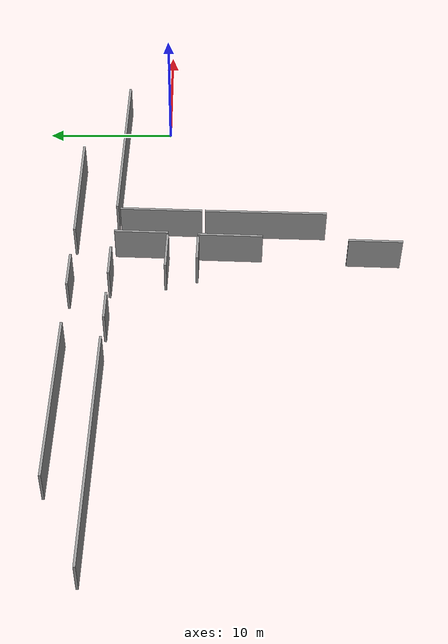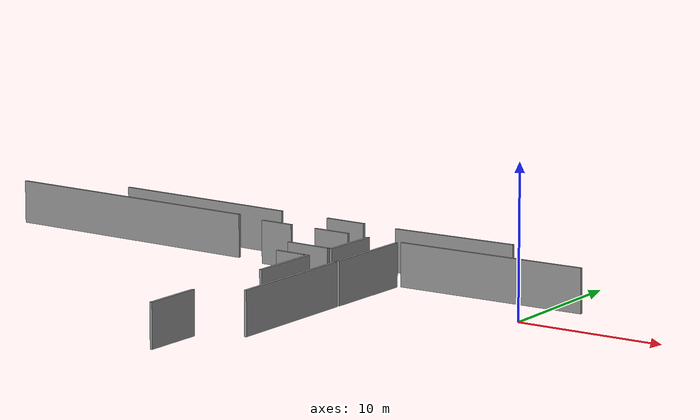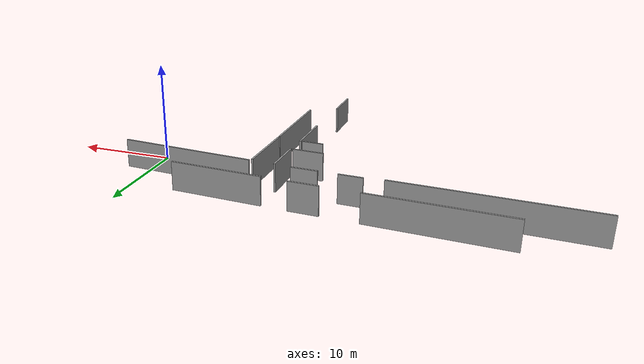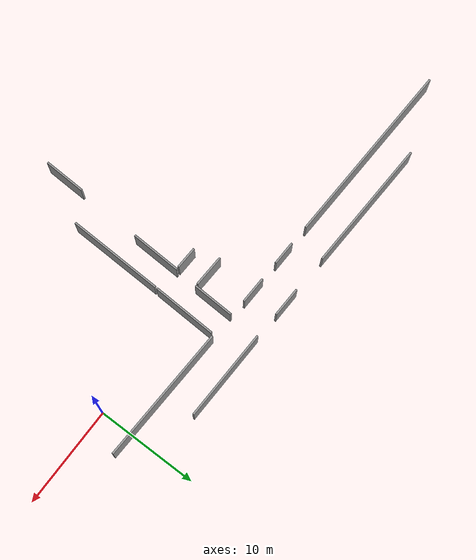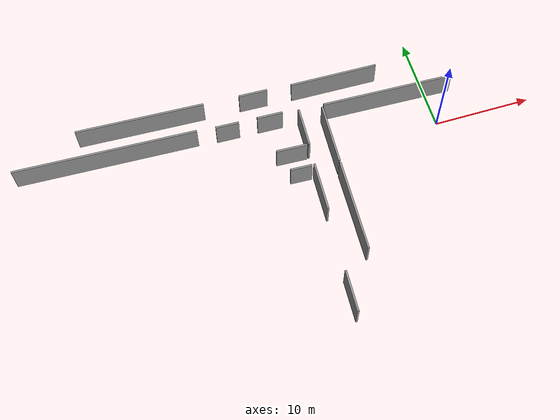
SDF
<sdf version="1.7">
 <world name="world">
  <scene>
   <ambient>0.8 0.8 0.8 1</ambient>
   <background>0 0 0 1</background>
   <grid>0</grid>
   <shadows>0</shadows>
   <grid>0</grid>
   <origin_visual>0</origin_visual>
  </scene>
  <light name="sun" type="directional">
   <cast_shadows>0</cast_shadows>
   <pose>0 0 10 0 -0 0</pose>
   <diffuse>0.8 0.8 0.8 1</diffuse>
   <specular>0.2 0.2 0.2 1</specular>
   <attenuation>
    <range>1000</range>
    <constant>0.9</constant>
    <linear>0.01</linear>
    <quadratic>0.001</quadratic>
   </attenuation>
   <direction>-0.5 0.1 -0.9</direction>
   <spot><inner_angle>0</inner_angle><outer_angle>0</outer_angle><falloff>0</falloff></spot>
  </light>
  <model name="campus_L1"><static>1</static><pose>-22000 -31500 0 0 -0 0</pose></model>
  <gravity>0 0 -9.8</gravity>
  <magnetic_field>6e-06 2.3e-05 -4.2e-05</magnetic_field>
  <atmosphere type="adiabatic"/>
  <physics type="ode">
   <max_step_size>0.001</max_step_size>
   <real_time_factor>1</real_time_factor>
   <real_time_update_rate>1000</real_time_update_rate>
  </physics>
  <spherical_coordinates>
   <surface_model>EARTH_WGS84</surface_model>
   <latitude_deg>0</latitude_deg>
   <longitude_deg>0</longitude_deg>
   <elevation>0</elevation>
   <heading_deg>0</heading_deg>
  </spherical_coordinates>
  <audio><device>default</device></audio>
  <model name="unit_box">
   <pose>-4.27173 3.60343 1.53644 -1e-06 -0.0138 -0.035971</pose>
   <link name="link">
    <inertial>
     <mass>1</mass>
     <inertia>
      <ixx>0.166667</ixx>
      <ixy>0</ixy>
      <ixz>0</ixz>
      <iyy>0.166667</iyy>
      <iyz>0</iyz>
      <izz>0.166667</izz>
     </inertia>
    </inertial>
    <collision name="collision"><geometry><box><size>13.4771 0.177092 2.88933</size></box></geometry></collision>
    <visual name="visual">
     <geometry><box><size>13.4771 0.177092 2.88933</size></box></geometry>
     <material>
      <script><name>Gazebo/Grey</name><uri>file://media/materials/scripts/gazebo.material</uri></script>
     </material>
    </visual>
   </link>
  </model>
  <model name="unit_box_clone">
   <pose>-8.9823 6.89439 1.50234 -0.001518 -0.013058 -0.022375</pose>
   <link name="link">
    <inertial>
     <mass>1</mass>
     <inertia>
      <ixx>0.166667</ixx>
      <ixy>0</ixy>
      <ixz>0</ixz>
      <iyy>0.166667</iyy>
      <iyz>0</iyz>
      <izz>0.166667</izz>
     </inertia>
    </inertial>
    <collision name="collision"><geometry><box><size>8.973 0.177092 2.88933</size></box></geometry></collision>
    <visual name="visual">
     <geometry><box><size>8.973 0.177092 2.88933</size></box></geometry>
     <material>
      <script><name>Gazebo/Grey</name><uri>file://media/materials/scripts/gazebo.material</uri></script>
     </material>
    </visual>
   </link>
  </model>
  <model name="unit_box_clone_0">
   <pose>-16.5469 4.17722 1.44375 0 0 -0.027477</pose>
   <link name="link">
    <inertial>
     <mass>1</mass>
     <inertia>
      <ixx>0.166667</ixx>
      <ixy>0</ixy>
      <ixz>0</ixz>
      <iyy>0.166667</iyy>
      <iyz>0</iyz>
      <izz>0.166667</izz>
     </inertia>
    </inertial>
    <collision name="collision"><geometry><box><size>2.61072 0.177092 2.88933</size></box></geometry></collision>
    <visual name="visual">
     <geometry><box><size>2.61072 0.177092 2.88933</size></box></geometry>
     <material>
      <script><name>Gazebo/Grey</name><uri>file://media/materials/scripts/gazebo.material</uri></script>
     </material>
    </visual>
   </link>
  </model>
  <model name="unit_box_clone_clone">
   <pose>-17.4696 7.17127 1.44375 0 -1e-06 -0.027009</pose>
   <link name="link">
    <inertial>
     <mass>1</mass>
     <inertia>
      <ixx>0.166667</ixx>
      <ixy>0</ixy>
      <ixz>0</ixz>
      <iyy>0.166667</iyy>
      <iyz>0</iyz>
      <izz>0.166667</izz>
     </inertia>
    </inertial>
    <collision name="collision"><geometry><box><size>2.92107 0.177092 2.88933</size></box></geometry></collision>
    <visual name="visual">
     <geometry><box><size>2.92107 0.177092 2.88933</size></box></geometry>
     <material>
      <script><name>Gazebo/Grey</name><uri>file://media/materials/scripts/gazebo.material</uri></script>
     </material>
    </visual>
   </link>
  </model>
  <model name="unit_box_clone_clone_0">
   <pose>-29.0699 7.55497 1.44375 3e-06 -1e-06 -0.035362</pose>
   <link name="link">
    <inertial>
     <mass>1</mass>
     <inertia>
      <ixx>0.166667</ixx>
      <ixy>0</ixy>
      <ixz>0</ixz>
      <iyy>0.166667</iyy>
      <iyz>0</iyz>
      <izz>0.166667</izz>
     </inertia>
    </inertial>
    <collision name="collision"><geometry><box><size>12.9697 0.177092 2.88933</size></box></geometry></collision>
    <visual name="visual">
     <geometry><box><size>12.9697 0.177092 2.88933</size></box></geometry>
     <material>
      <script><name>Gazebo/Grey</name><uri>file://media/materials/scripts/gazebo.material</uri></script>
     </material>
    </visual>
   </link>
  </model>
  <model name="unit_box_clone_clone_0_clone">
   <pose>-33.1319 4.7363 1.57603 0 -1e-06 -0.034047</pose>
   <link name="link">
    <inertial>
     <mass>1</mass>
     <inertia>
      <ixx>0.166667</ixx>
      <ixy>0</ixy>
      <ixz>0</ixz>
      <iyy>0.166667</iyy>
      <iyz>0</iyz>
      <izz>0.166667</izz>
     </inertia>
    </inertial>
    <collision name="collision"><geometry><box><size>18.3075 0.177092 2.88933</size></box></geometry></collision>
    <visual name="visual">
     <geometry><box><size>18.3075 0.177092 2.88933</size></box></geometry>
     <material>
      <script><name>Gazebo/Grey</name><uri>file://media/materials/scripts/gazebo.material</uri></script>
     </material>
    </visual>
   </link>
  </model>
  <model name="unit_box_clone_clone_clone">
   <pose>-20.9125 4.29448 1.44375 -0 1e-06 -0.027637</pose>
   <link name="link">
    <inertial>
     <mass>1</mass>
     <inertia>
      <ixx>0.166667</ixx>
      <ixy>0</ixy>
      <ixz>0</ixz>
      <iyy>0.166667</iyy>
      <iyz>0</iyz>
      <izz>0.166667</izz>
     </inertia>
    </inertial>
    <collision name="collision"><geometry><box><size>2.34889 0.177092 2.88933</size></box></geometry></collision>
    <visual name="visual">
     <geometry><box><size>2.34889 0.177092 2.88933</size></box></geometry>
     <material>
      <script><name>Gazebo/Grey</name><uri>file://media/materials/scripts/gazebo.material</uri></script>
     </material>
    </visual>
   </link>
  </model>
  <model name="unit_box_clone_0_clone">
   <pose>-13.6625 1.91333 1.44375 -6e-06 0 -1.60681</pose>
   <link name="link">
    <inertial>
     <mass>1</mass>
     <inertia>
      <ixx>0.166667</ixx>
      <ixy>0</ixy>
      <ixz>0</ixz>
      <iyy>0.166667</iyy>
      <iyz>0</iyz>
      <izz>0.166667</izz>
     </inertia>
    </inertial>
    <collision name="collision"><geometry><box><size>4.0922 0.177092 2.88933</size></box></geometry></collision>
    <visual name="visual">
     <geometry><box><size>4.0922 0.177092 2.88933</size></box></geometry>
     <material>
      <script><name>Gazebo/Grey</name><uri>file://media/materials/scripts/gazebo.material</uri></script>
     </material>
    </visual>
   </link>
  </model>
  <model name="unit_box_clone_0_clone_clone">
   <pose>-14.0044 -4.84043 1.44376 1e-06 1e-06 -1.60661</pose>
   <link name="link">
    <inertial>
     <mass>1</mass>
     <inertia>
      <ixx>0.166667</ixx>
      <ixy>0</ixy>
      <ixz>0</ixz>
      <iyy>0.166667</iyy>
      <iyz>0</iyz>
      <izz>0.166667</izz>
     </inertia>
    </inertial>
    <collision name="collision"><geometry><box><size>4.94935 0.177092 2.88933</size></box></geometry></collision>
    <visual name="visual">
     <geometry><box><size>4.94935 0.177092 2.88933</size></box></geometry>
     <material>
      <script><name>Gazebo/Grey</name><uri>file://media/materials/scripts/gazebo.material</uri></script>
     </material>
    </visual>
   </link>
  </model>
  <model name="unit_box_clone_0_clone_clone_0">
   <pose>-14.5591 -15.8284 1.44376 -0 -0 -1.60661</pose>
   <link name="link">
    <inertial>
     <mass>1</mass>
     <inertia>
      <ixx>0.166667</ixx>
      <ixy>0</ixy>
      <ixz>0</ixz>
      <iyy>0.166667</iyy>
      <iyz>0</iyz>
      <izz>0.166667</izz>
     </inertia>
    </inertial>
    <collision name="collision"><geometry><box><size>4.0922 0.177092 2.88933</size></box></geometry></collision>
    <visual name="visual">
     <geometry><box><size>4.0922 0.177092 2.88933</size></box></geometry>
     <material>
      <script><name>Gazebo/Grey</name><uri>file://media/materials/scripts/gazebo.material</uri></script>
     </material>
    </visual>
   </link>
  </model>
  <model name="unit_box_clone_1">
   <pose>-11.6017 -7.60072 1.44376 5e-06 0 1.54224</pose>
   <link name="link">
    <inertial>
     <mass>1</mass>
     <inertia>
      <ixx>0.166667</ixx>
      <ixy>0</ixy>
      <ixz>0</ixz>
      <iyy>0.166667</iyy>
      <iyz>0</iyz>
      <izz>0.166667</izz>
     </inertia>
    </inertial>
    <collision name="collision"><geometry><box><size>9.36707 0.177092 2.88933</size></box></geometry></collision>
    <visual name="visual">
     <geometry><box><size>9.36707 0.177092 2.88933</size></box></geometry>
     <material>
      <script><name>Gazebo/Grey</name><uri>file://media/materials/scripts/gazebo.material</uri></script>
     </material>
    </visual>
   </link>
  </model>
  <model name="unit_box_clone_0_clone_clone_1">
   <pose>-11.3455 0.450305 1.44375 0 -0 -1.60742</pose>
   <link name="link">
    <inertial>
     <mass>1</mass>
     <inertia>
      <ixx>0.166667</ixx>
      <ixy>0</ixy>
      <ixz>0</ixz>
      <iyy>0.166667</iyy>
      <iyz>0</iyz>
      <izz>0.166667</izz>
     </inertia>
    </inertial>
    <collision name="collision"><geometry><box><size>6.30571 0.177092 2.88933</size></box></geometry></collision>
    <visual name="visual">
     <geometry><box><size>6.30571 0.177092 2.88933</size></box></geometry>
     <material>
      <script><name>Gazebo/Grey</name><uri>file://media/materials/scripts/gazebo.material</uri></script>
     </material>
    </visual>
   </link>
  </model>
  <model name="unit_box_clone_0_clone_clone_clone">
   <pose>-15.2444 -2.37509 1.44376 -0 -0 -0.035875</pose>
   <link name="link">
    <inertial>
     <mass>1</mass>
     <inertia>
      <ixx>0.166667</ixx>
      <ixy>0</ixy>
      <ixz>0</ixz>
      <iyy>0.166667</iyy>
      <iyz>0</iyz>
      <izz>0.166667</izz>
     </inertia>
    </inertial>
    <collision name="collision"><geometry><box><size>2.15929 0.177092 2.88933</size></box></geometry></collision>
    <visual name="visual">
     <geometry><box><size>2.15929 0.177092 2.88933</size></box></geometry>
     <material>
      <script><name>Gazebo/Grey</name><uri>file://media/materials/scripts/gazebo.material</uri></script>
     </material>
    </visual>
   </link>
  </model>
  <model name="unit_box_clone_0_clone_clone_2">
   <pose>-15.5119 -0.036415 1.44398 -0.00265 3e-06 3.10145</pose>
   <link name="link">
    <inertial>
     <mass>1</mass>
     <inertia>
      <ixx>0.166667</ixx>
      <ixy>0</ixy>
      <ixz>0</ixz>
      <iyy>0.166667</iyy>
      <iyz>0</iyz>
      <izz>0.166667</izz>
     </inertia>
    </inertial>
    <collision name="collision"><geometry><box><size>3.1396 0.177092 2.88933</size></box></geometry></collision>
    <visual name="visual">
     <geometry><box><size>3.1396 0.177092 2.88933</size></box></geometry>
     <material>
      <script><name>Gazebo/Grey</name><uri>file://media/materials/scripts/gazebo.material</uri></script>
     </material>
    </visual>
   </link>
  </model>
  <offset>22000 31500 0 0 0 0</offset>
  <crs>EPSG:3414</crs>
 </world>
</sdf>
